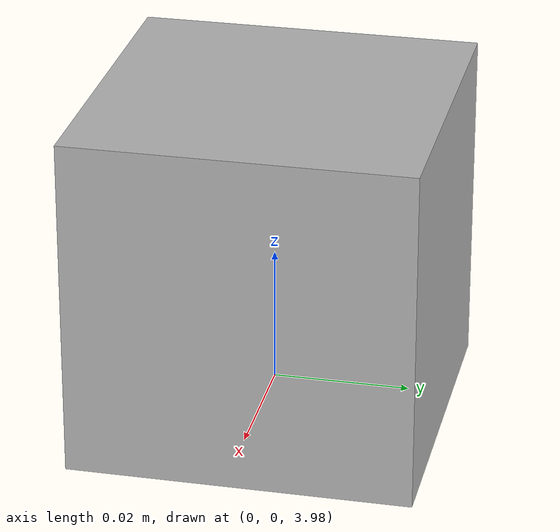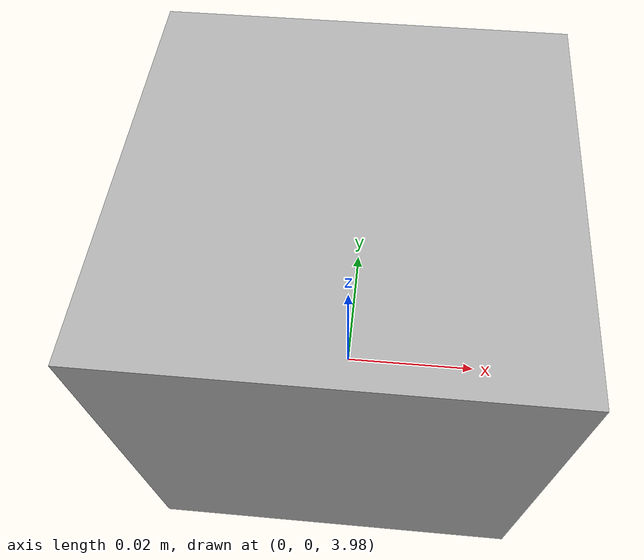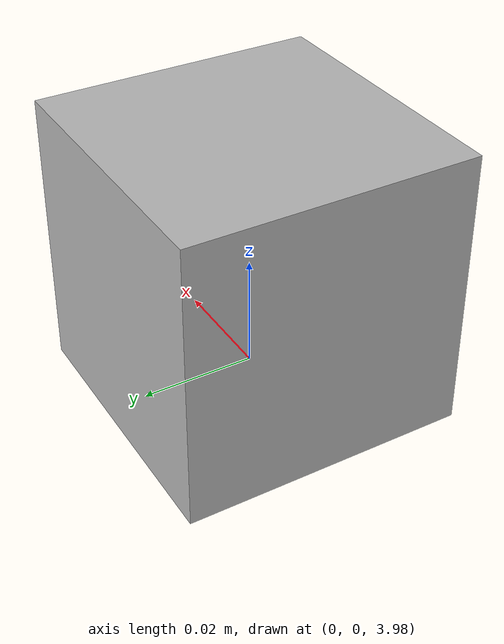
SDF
<?xml version="1.0"?>
<sdf version="1.6">
  <world name="default">
    <scene>
      <shadows>false</shadows>
      <grid>false</grid>
      <sky>
        <clouds>
          <speed>4</speed>
        </clouds>
      </sky>
    </scene>
    <include>
      <uri>model://sun</uri>
    </include>
    <include>
      <uri>model://ground_plane</uri>
    </include>
    <include>
      <uri>model://landing_station</uri>
      <pose>0 0 0 0 0 0</pose>
    </include>

    <model name="camera">
      <static>true</static>
      <pose>0 0 4 0 0 0</pose>
      <link name="camera_link">
        <visual name="visual">
          <geometry>
            <box><size>0.05 0.05 0.05</size></box>
          </geometry>
        </visual>
        <collision name="collision">
          <geometry>
            <box><size>0.05 0.05 0.05</size></box>
          </geometry>
        </collision>
        <sensor type="camera" name="camera">
          <pose>0 0 0 0 1.5707 1.5707</pose>
          <update_rate>30.0</update_rate>
          <camera name="head">
            <horizontal_fov>2.0944</horizontal_fov>
            <image>
              <width>800</width>
              <height>800</height>
              <format>R8G8B8</format>
            </image>
          </camera>
          <plugin name="camera_plugin" filename="libgazebo_ros_camera.so">
            <alwaysOn>true</alwaysOn>
            <updateRate>30.0</updateRate>
            <cameraName>camera</cameraName>
            <imageTopicName>image_raw</imageTopicName>
            <cameraInfoTopicName>camera_info</cameraInfoTopicName>
            <frameName>camera_link</frameName>
            <hackBaseline>0.07</hackBaseline>
            <distortionK1>0.0</distortionK1>
            <distortionK2>0.0</distortionK2>
            <distortionK3>0.0</distortionK3>
            <distortionT1>0.0</distortionT1>
            <distortionT2>0.0</distortionT2>
            <robotNamespace></robotNamespace>
            <tf_prefix_></tf_prefix_>
          </plugin>
          <visualize>true</visualize>
        </sensor>
      </link>
    </model>
  </world>
</sdf>

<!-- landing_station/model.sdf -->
<sdf version="1.4">
    <model name="landing_station">
      <pose>0 0 0  0 0 0</pose>
      <static>true</static>
      <link name="body">
        <visual name="visual">
          <geometry>
            <mesh><uri>model://landing_station/meshes/marker.obj</uri></mesh>
          </geometry>
        </visual>
      </link>
    </model>
</sdf>
